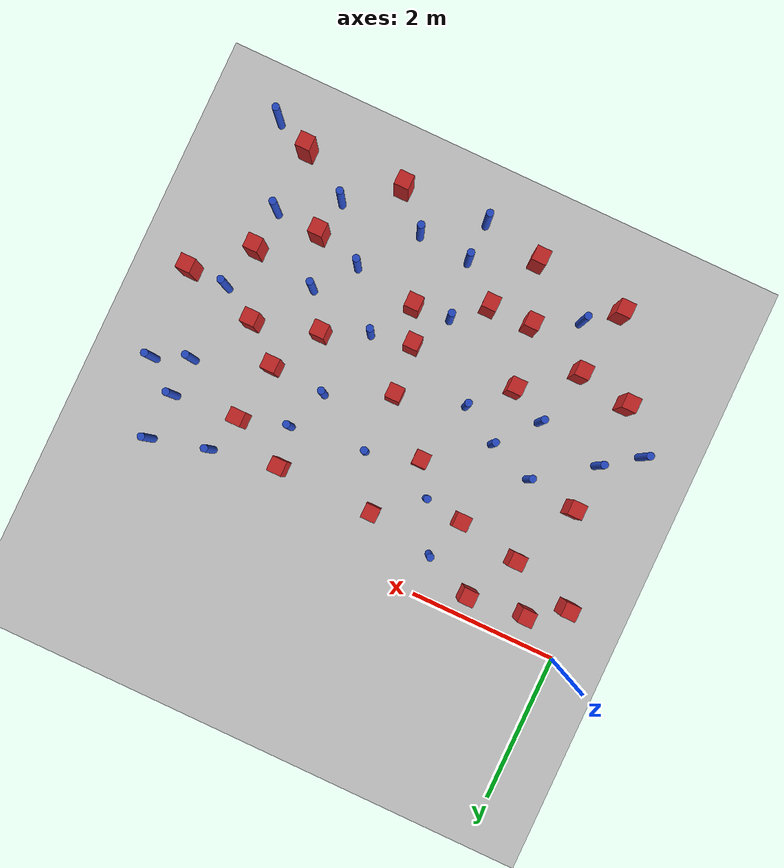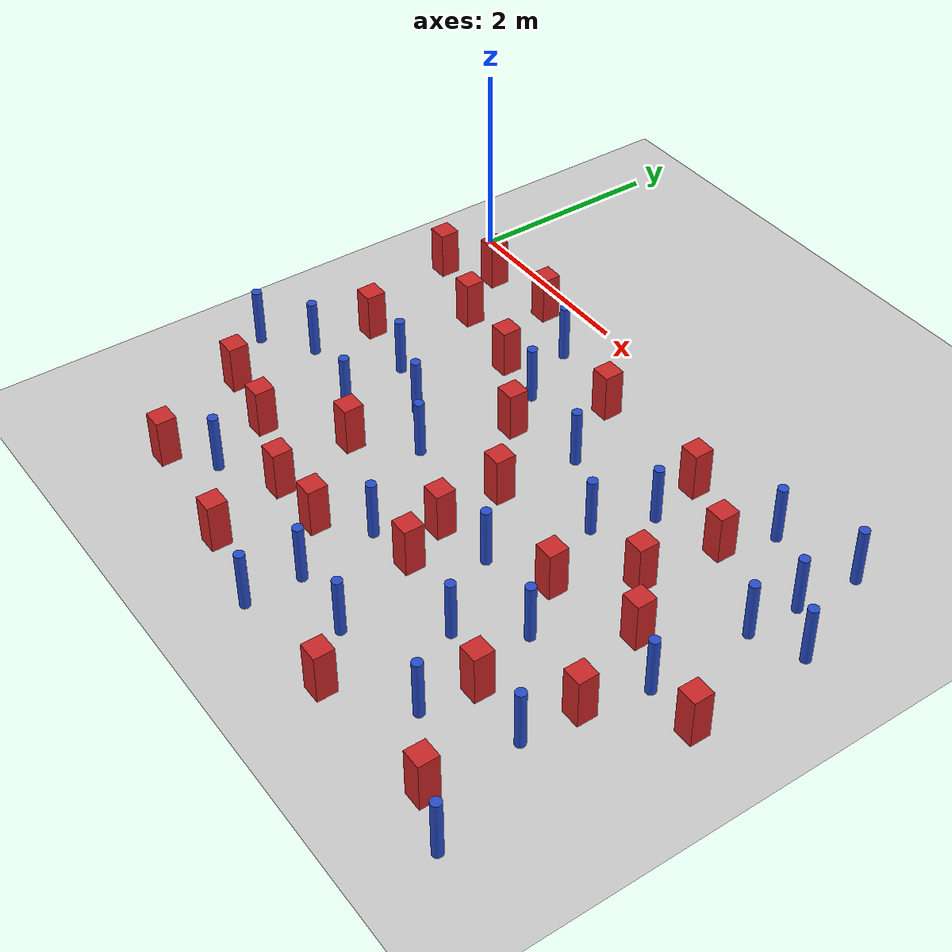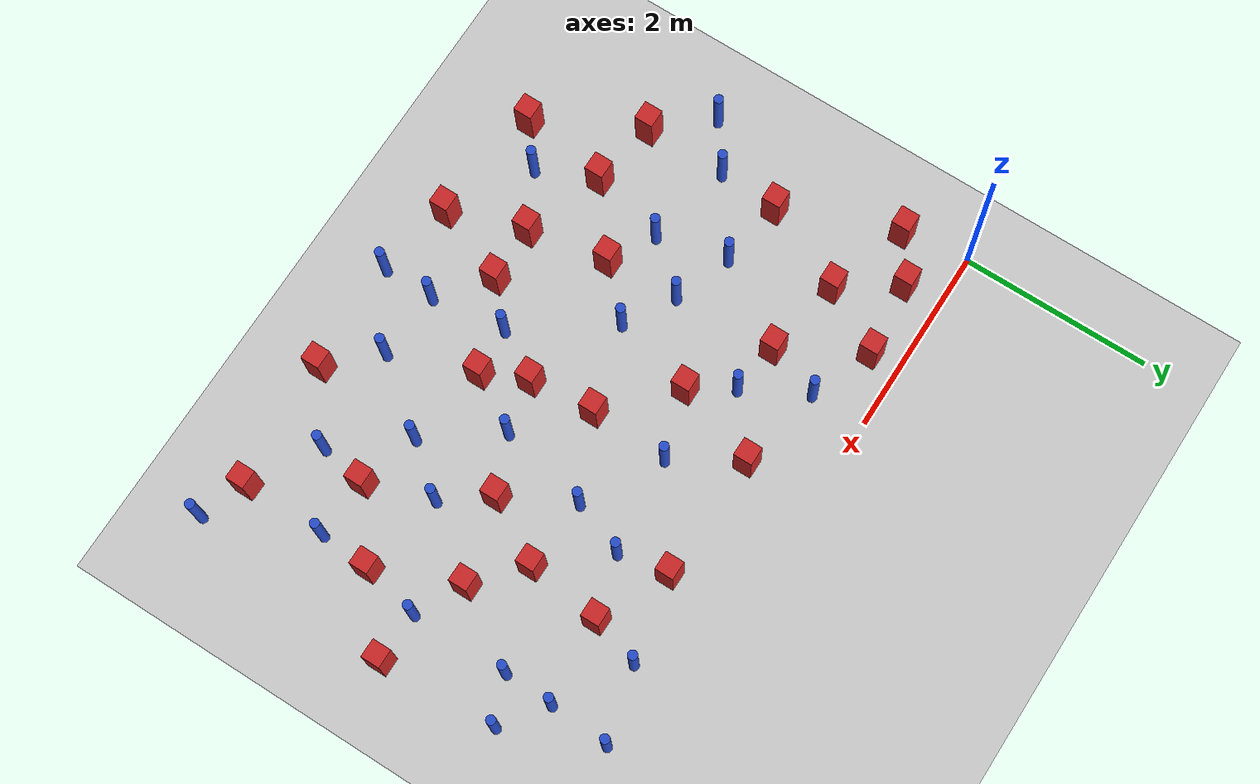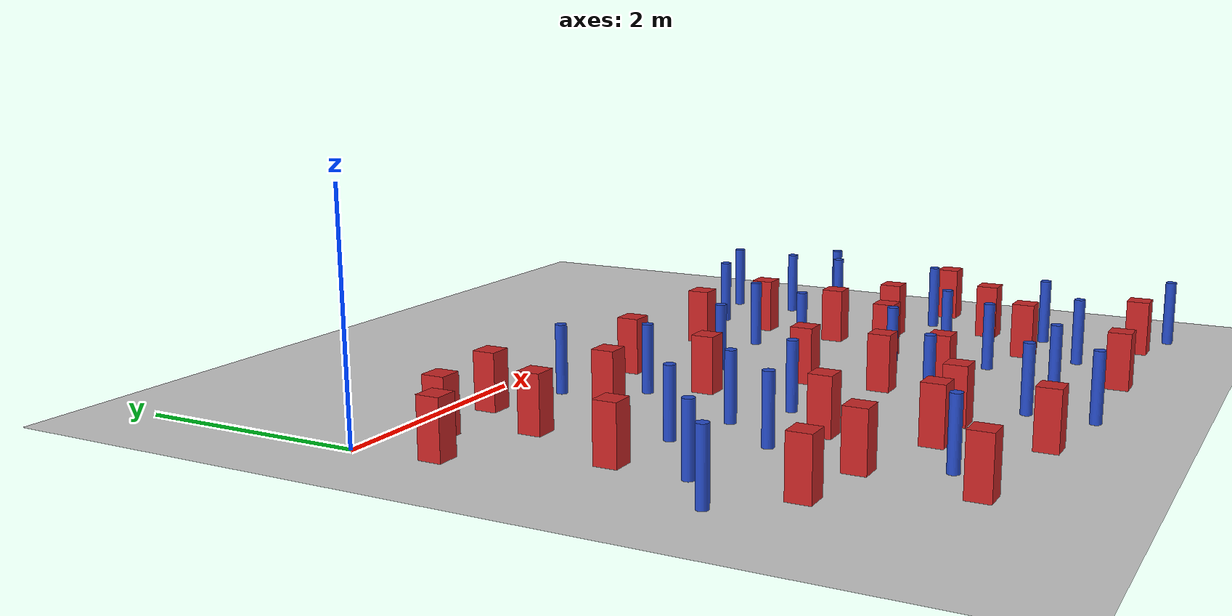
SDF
<sdf version="1.6">
 <world name="default">
  <model name="ground_plane">
   <static>1</static>
   <link name="link">
    <collision name="collision">
     <geometry><plane><normal>0 0 1</normal><size>100 100</size></plane></geometry>
     <surface><friction><ode><mu>100</mu><mu2>50</mu2></ode></friction></surface>
    </collision>
    <visual name="visual">
     <cast_shadows>0</cast_shadows>
     <geometry><plane><normal>0 0 1</normal><size>100 100</size></plane></geometry>
     <material>
      <ambient>1.0 1.0 1.0 1.0</ambient>
      <diffuse>0.8 0.8 0.8 1.0</diffuse>
      <specular>0.01 0.01 0.01 1.000000</specular>
     </material>
    </visual>
   </link>
  </model>
  <model name="square_post_obstacle2">
   <static>true</static>
   <pose>2.65907516394 -1.63502521584 8.22691968438e-08 7.2212513382e-06 -7.54495500217e-07 2.29674213826e-05</pose>
   <link name="link">
    <pose>0 0 0.25 0 -0 0</pose>
    <inertial>
     <mass>100</mass>
     <inertia>
      <ixx>0.166667</ixx>
      <ixy>0</ixy>
      <ixz>0</ixz>
      <iyy>0.166667</iyy>
      <iyz>0</iyz>
      <izz>0.166667</izz>
     </inertia>
    </inertial>
    <collision name="collision"><geometry><box><size>.2 .2 .5</size></box></geometry></collision>
    <visual name="visual">
     <geometry><box><size>.2 .2 .5</size></box></geometry>
     <material>
      <script><name>Gazebo/Red</name><uri>file://media/materials/scripts/gazebo.material</uri></script>
     </material>
    </visual>
   </link>
  </model>
  <model name="pole_obstacle1">
   <static>true</static>
   <pose>3.19692016445 -4.2430297542 2.88873142074e-08 -9.90536689859e-09 4.60219948989e-07 -1.20965994961e-07</pose>
   <link name="link">
    <pose>0 0 0.3 0 -0 0</pose>
    <inertial>
     <mass>1</mass>
     <inertia><ixx>0.145833</ixx><ixy>0</ixy><ixz>0</ixz><iyy>0.145833</iyy><iyz>0</iyz><izz>0.125</izz></inertia>
    </inertial>
    <collision name="collision">
     <geometry><cylinder><radius>0.05</radius><length>.6</length></cylinder></geometry>
    </collision>
    <visual name="visual">
     <geometry><cylinder><radius>0.05</radius><length>.6</length></cylinder></geometry>
     <material>
      <script><name>Gazebo/Blue</name><uri>file://media/materials/scripts/gazebo.material</uri></script>
     </material>
    </visual>
   </link>
  </model>
  <model name="square_post_obstacle5">
   <static>true</static>
   <pose>1.95356166881 -2.98597799232 8.22691968438e-08 7.2212513382e-06 -7.54495500217e-07 2.29674213826e-05</pose>
   <link name="link">
    <pose>0 0 0.25 0 -0 0</pose>
    <inertial>
     <mass>100</mass>
     <inertia>
      <ixx>0.166667</ixx>
      <ixy>0</ixy>
      <ixz>0</ixz>
      <iyy>0.166667</iyy>
      <iyz>0</iyz>
      <izz>0.166667</izz>
     </inertia>
    </inertial>
    <collision name="collision"><geometry><box><size>.2 .2 .5</size></box></geometry></collision>
    <visual name="visual">
     <geometry><box><size>.2 .2 .5</size></box></geometry>
     <material>
      <script><name>Gazebo/Red</name><uri>file://media/materials/scripts/gazebo.material</uri></script>
     </material>
    </visual>
   </link>
  </model>
  <model name="pole_obstacle8">
   <static>true</static>
   <pose>4.37933698074 -1.31018265101 2.88873142074e-08 -9.90536689445e-09 4.60219948999e-07 -1.20965994956e-07</pose>
   <link name="link">
    <pose>0 0 0.3 0 -0 0</pose>
    <inertial>
     <mass>1</mass>
     <inertia><ixx>0.145833</ixx><ixy>0</ixy><ixz>0</ixz><iyy>0.145833</iyy><iyz>0</iyz><izz>0.125</izz></inertia>
    </inertial>
    <collision name="collision">
     <geometry><cylinder><radius>0.05</radius><length>.6</length></cylinder></geometry>
    </collision>
    <visual name="visual">
     <geometry><cylinder><radius>0.05</radius><length>.6</length></cylinder></geometry>
     <material>
      <script><name>Gazebo/Blue</name><uri>file://media/materials/scripts/gazebo.material</uri></script>
     </material>
    </visual>
   </link>
  </model>
  <model name="pole_obstacle10">
   <static>true</static>
   <pose>5.02063466316 -4.25020811535 2.88873142074e-08 -9.90536690842e-09 4.60219948965e-07 -1.20965994976e-07</pose>
   <link name="link">
    <pose>0 0 0.3 0 -0 0</pose>
    <inertial>
     <mass>1</mass>
     <inertia><ixx>0.145833</ixx><ixy>0</ixy><ixz>0</ixz><iyy>0.145833</iyy><iyz>0</iyz><izz>0.125</izz></inertia>
    </inertial>
    <collision name="collision">
     <geometry><cylinder><radius>0.05</radius><length>.6</length></cylinder></geometry>
    </collision>
    <visual name="visual">
     <geometry><cylinder><radius>0.05</radius><length>.6</length></cylinder></geometry>
     <material>
      <script><name>Gazebo/Blue</name><uri>file://media/materials/scripts/gazebo.material</uri></script>
     </material>
    </visual>
   </link>
  </model>
  <model name="square_post_obstacle21">
   <static>true</static>
   <pose>5.75815409374 -3.21778082992 8.22691968438e-08 7.2212513382e-06 -7.54495500217e-07 2.29674213826e-05</pose>
   <link name="link">
    <pose>0 0 0.25 0 -0 0</pose>
    <inertial>
     <mass>100</mass>
     <inertia>
      <ixx>0.166667</ixx>
      <ixy>0</ixy>
      <ixz>0</ixz>
      <iyy>0.166667</iyy>
      <iyz>0</iyz>
      <izz>0.166667</izz>
     </inertia>
    </inertial>
    <collision name="collision"><geometry><box><size>.2 .2 .5</size></box></geometry></collision>
    <visual name="visual">
     <geometry><box><size>.2 .2 .5</size></box></geometry>
     <material>
      <script><name>Gazebo/Red</name><uri>file://media/materials/scripts/gazebo.material</uri></script>
     </material>
    </visual>
   </link>
  </model>
  <model name="square_post_obstacle25">
   <static>true</static>
   <pose>3.32419489324 -2.25799754889 8.22691968438e-08 7.2212513382e-06 -7.54495500217e-07 2.29674213826e-05</pose>
   <link name="link">
    <pose>0 0 0.25 0 -0 0</pose>
    <inertial>
     <mass>100</mass>
     <inertia>
      <ixx>0.166667</ixx>
      <ixy>0</ixy>
      <ixz>0</ixz>
      <iyy>0.166667</iyy>
      <iyz>0</iyz>
      <izz>0.166667</izz>
     </inertia>
    </inertial>
    <collision name="collision"><geometry><box><size>.2 .2 .5</size></box></geometry></collision>
    <visual name="visual">
     <geometry><box><size>.2 .2 .5</size></box></geometry>
     <material>
      <script><name>Gazebo/Red</name><uri>file://media/materials/scripts/gazebo.material</uri></script>
     </material>
    </visual>
   </link>
  </model>
  <model name="square_post_obstacle37">
   <static>true</static>
   <pose>0.604121483846 -1.88745931776 8.22691968438e-08 7.2212513382e-06 -7.54495500217e-07 2.29674213826e-05</pose>
   <link name="link">
    <pose>0 0 0.25 0 -0 0</pose>
    <inertial>
     <mass>100</mass>
     <inertia>
      <ixx>0.166667</ixx>
      <ixy>0</ixy>
      <ixz>0</ixz>
      <iyy>0.166667</iyy>
      <iyz>0</iyz>
      <izz>0.166667</izz>
     </inertia>
    </inertial>
    <collision name="collision"><geometry><box><size>.2 .2 .5</size></box></geometry></collision>
    <visual name="visual">
     <geometry><box><size>.2 .2 .5</size></box></geometry>
     <material>
      <script><name>Gazebo/Red</name><uri>file://media/materials/scripts/gazebo.material</uri></script>
     </material>
    </visual>
   </link>
  </model>
  <model name="pole_obstacle41">
   <static>true</static>
   <pose>3.94366712354 -2.8416236895 2.88873142074e-08 -9.90536690232e-09 4.6021994898e-07 -1.20965994968e-07</pose>
   <link name="link">
    <pose>0 0 0.3 0 -0 0</pose>
    <inertial>
     <mass>1</mass>
     <inertia><ixx>0.145833</ixx><ixy>0</ixy><ixz>0</ixz><iyy>0.145833</iyy><iyz>0</iyz><izz>0.125</izz></inertia>
    </inertial>
    <collision name="collision">
     <geometry><cylinder><radius>0.05</radius><length>.6</length></cylinder></geometry>
    </collision>
    <visual name="visual">
     <geometry><cylinder><radius>0.05</radius><length>.6</length></cylinder></geometry>
     <material>
      <script><name>Gazebo/Blue</name><uri>file://media/materials/scripts/gazebo.material</uri></script>
     </material>
    </visual>
   </link>
  </model>
  <model name="square_post_obstacle47">
   <static>true</static>
   <pose>4.35958236372 -4.75237599017 8.22691968438e-08 7.2212513382e-06 -7.54495500217e-07 2.29674213826e-05</pose>
   <link name="link">
    <pose>0 0 0.25 0 -0 0</pose>
    <inertial>
     <mass>100</mass>
     <inertia>
      <ixx>0.166667</ixx>
      <ixy>0</ixy>
      <ixz>0</ixz>
      <iyy>0.166667</iyy>
      <iyz>0</iyz>
      <izz>0.166667</izz>
     </inertia>
    </inertial>
    <collision name="collision"><geometry><box><size>.2 .2 .5</size></box></geometry></collision>
    <visual name="visual">
     <geometry><box><size>.2 .2 .5</size></box></geometry>
     <material>
      <script><name>Gazebo/Red</name><uri>file://media/materials/scripts/gazebo.material</uri></script>
     </material>
    </visual>
   </link>
  </model>
  <model name="pole_obstacle50">
   <static>true</static>
   <pose>4.47226875539 -3.5674996448 2.88873142074e-08 -9.90536690245e-09 4.6021994898e-07 -1.20965994966e-07</pose>
   <link name="link">
    <pose>0 0 0.3 0 -0 0</pose>
    <inertial>
     <mass>1</mass>
     <inertia><ixx>0.145833</ixx><ixy>0</ixy><ixz>0</ixz><iyy>0.145833</iyy><iyz>0</iyz><izz>0.125</izz></inertia>
    </inertial>
    <collision name="collision">
     <geometry><cylinder><radius>0.05</radius><length>.6</length></cylinder></geometry>
    </collision>
    <visual name="visual">
     <geometry><cylinder><radius>0.05</radius><length>.6</length></cylinder></geometry>
     <material>
      <script><name>Gazebo/Blue</name><uri>file://media/materials/scripts/gazebo.material</uri></script>
     </material>
    </visual>
   </link>
  </model>
  <model name="square_post_obstacle56">
   <static>true</static>
   <pose>4.5292871625 -2.57862227413 8.22691968438e-08 7.2212513382e-06 -7.54495500217e-07 2.29674213826e-05</pose>
   <link name="link">
    <pose>0 0 0.25 0 -0 0</pose>
    <inertial>
     <mass>100</mass>
     <inertia>
      <ixx>0.166667</ixx>
      <ixy>0</ixy>
      <ixz>0</ixz>
      <iyy>0.166667</iyy>
      <iyz>0</iyz>
      <izz>0.166667</izz>
     </inertia>
    </inertial>
    <collision name="collision"><geometry><box><size>.2 .2 .5</size></box></geometry></collision>
    <visual name="visual">
     <geometry><box><size>.2 .2 .5</size></box></geometry>
     <material>
      <script><name>Gazebo/Red</name><uri>file://media/materials/scripts/gazebo.material</uri></script>
     </material>
    </visual>
   </link>
  </model>
  <model name="square_post_obstacle65">
   <static>true</static>
   <pose>0.138273590117 -0.688799583027 8.22691968438e-08 7.22125133819e-06 -7.54495500217e-07 2.29674213826e-05</pose>
   <link name="link">
    <pose>0 0 0.25 0 -0 0</pose>
    <inertial>
     <mass>100</mass>
     <inertia>
      <ixx>0.166667</ixx>
      <ixy>0</ixy>
      <ixz>0</ixz>
      <iyy>0.166667</iyy>
      <iyz>0</iyz>
      <izz>0.166667</izz>
     </inertia>
    </inertial>
    <collision name="collision"><geometry><box><size>.2 .2 .5</size></box></geometry></collision>
    <visual name="visual">
     <geometry><box><size>.2 .2 .5</size></box></geometry>
     <material>
      <script><name>Gazebo/Red</name><uri>file://media/materials/scripts/gazebo.material</uri></script>
     </material>
    </visual>
   </link>
  </model>
  <model name="pole_obstacle63">
   <static>true</static>
   <pose>4.87603295644 -3.05621292383 2.88873142074e-08 -9.90536690245e-09 4.6021994898e-07 -1.20965994966e-07</pose>
   <link name="link">
    <pose>0 0 0.3 0 -0 0</pose>
    <inertial>
     <mass>1</mass>
     <inertia><ixx>0.145833</ixx><ixy>0</ixy><ixz>0</ixz><iyy>0.145833</iyy><iyz>0</iyz><izz>0.125</izz></inertia>
    </inertial>
    <collision name="collision">
     <geometry><cylinder><radius>0.05</radius><length>.6</length></cylinder></geometry>
    </collision>
    <visual name="visual">
     <geometry><cylinder><radius>0.05</radius><length>.6</length></cylinder></geometry>
     <material>
      <script><name>Gazebo/Blue</name><uri>file://media/materials/scripts/gazebo.material</uri></script>
     </material>
    </visual>
   </link>
  </model>
  <model name="square_post_obstacle67">
   <static>true</static>
   <pose>1.2677827063 -3.52688391108 8.22691968438e-08 7.2212513382e-06 -7.54495500217e-07 2.29674213826e-05</pose>
   <link name="link">
    <pose>0 0 0.25 0 -0 0</pose>
    <inertial>
     <mass>100</mass>
     <inertia>
      <ixx>0.166667</ixx>
      <ixy>0</ixy>
      <ixz>0</ixz>
      <iyy>0.166667</iyy>
      <iyz>0</iyz>
      <izz>0.166667</izz>
     </inertia>
    </inertial>
    <collision name="collision"><geometry><box><size>.2 .2 .5</size></box></geometry></collision>
    <visual name="visual">
     <geometry><box><size>.2 .2 .5</size></box></geometry>
     <material>
      <script><name>Gazebo/Red</name><uri>file://media/materials/scripts/gazebo.material</uri></script>
     </material>
    </visual>
   </link>
  </model>
  <model name="pole_obstacle89">
   <static>true</static>
   <pose>3.35976422919 -1.42641567848 2.88873142074e-08 -9.90536689395e-09 4.60219949e-07 -1.20965994953e-07</pose>
   <link name="link">
    <pose>0 0 0.3 0 -0 0</pose>
    <inertial>
     <mass>1</mass>
     <inertia><ixx>0.145833</ixx><ixy>0</ixy><ixz>0</ixz><iyy>0.145833</iyy><iyz>0</iyz><izz>0.125</izz></inertia>
    </inertial>
    <collision name="collision">
     <geometry><cylinder><radius>0.05</radius><length>.6</length></cylinder></geometry>
    </collision>
    <visual name="visual">
     <geometry><cylinder><radius>0.05</radius><length>.6</length></cylinder></geometry>
     <material>
      <script><name>Gazebo/Blue</name><uri>file://media/materials/scripts/gazebo.material</uri></script>
     </material>
    </visual>
   </link>
  </model>
  <model name="pole_obstacle90">
   <static>true</static>
   <pose>3.19130147926 -4.79603308093 2.88873142074e-08 -9.90536689859e-09 4.60219948989e-07 -1.20965994961e-07</pose>
   <link name="link">
    <pose>0 0 0.3 0 -0 0</pose>
    <inertial>
     <mass>1</mass>
     <inertia><ixx>0.145833</ixx><ixy>0</ixy><ixz>0</ixz><iyy>0.145833</iyy><iyz>0</iyz><izz>0.125</izz></inertia>
    </inertial>
    <collision name="collision">
     <geometry><cylinder><radius>0.05</radius><length>.6</length></cylinder></geometry>
    </collision>
    <visual name="visual">
     <geometry><cylinder><radius>0.05</radius><length>.6</length></cylinder></geometry>
     <material>
      <script><name>Gazebo/Blue</name><uri>file://media/materials/scripts/gazebo.material</uri></script>
     </material>
    </visual>
   </link>
  </model>
  <model name="pole_obstacle101">
   <static>true</static>
   <pose>3.91275337046 -4.29644837357 2.88873142074e-08 -9.90536689859e-09 4.60219948989e-07 -1.20965994961e-07</pose>
   <link name="link">
    <pose>0 0 0.3 0 -0 0</pose>
    <inertial>
     <mass>1</mass>
     <inertia><ixx>0.145833</ixx><ixy>0</ixy><ixz>0</ixz><iyy>0.145833</iyy><iyz>0</iyz><izz>0.125</izz></inertia>
    </inertial>
    <collision name="collision">
     <geometry><cylinder><radius>0.05</radius><length>.6</length></cylinder></geometry>
    </collision>
    <visual name="visual">
     <geometry><cylinder><radius>0.05</radius><length>.6</length></cylinder></geometry>
     <material>
      <script><name>Gazebo/Blue</name><uri>file://media/materials/scripts/gazebo.material</uri></script>
     </material>
    </visual>
   </link>
  </model>
  <model name="square_post_obstacle92">
   <static>true</static>
   <pose>5.70820086182 -4.66755593937 8.22691968438e-08 7.22125133819e-06 -7.54495500217e-07 2.29674213826e-05</pose>
   <link name="link">
    <pose>0 0 0.25 0 -0 0</pose>
    <inertial>
     <mass>100</mass>
     <inertia>
      <ixx>0.166667</ixx>
      <ixy>0</ixy>
      <ixz>0</ixz>
      <iyy>0.166667</iyy>
      <iyz>0</iyz>
      <izz>0.166667</izz>
     </inertia>
    </inertial>
    <collision name="collision"><geometry><box><size>.2 .2 .5</size></box></geometry></collision>
    <visual name="visual">
     <geometry><box><size>.2 .2 .5</size></box></geometry>
     <material>
      <script><name>Gazebo/Red</name><uri>file://media/materials/scripts/gazebo.material</uri></script>
     </material>
    </visual>
   </link>
  </model>
  <model name="pole_obstacle106">
   <static>true</static>
   <pose>6.37298606447 -1.36751825747 2.88873142074e-08 -9.90536689445e-09 4.60219948999e-07 -1.20965994956e-07</pose>
   <link name="link">
    <pose>0 0 0.3 0 -0 0</pose>
    <inertial>
     <mass>1</mass>
     <inertia><ixx>0.145833</ixx><ixy>0</ixy><ixz>0</ixz><iyy>0.145833</iyy><iyz>0</iyz><izz>0.125</izz></inertia>
    </inertial>
    <collision name="collision">
     <geometry><cylinder><radius>0.05</radius><length>.6</length></cylinder></geometry>
    </collision>
    <visual name="visual">
     <geometry><cylinder><radius>0.05</radius><length>.6</length></cylinder></geometry>
     <material>
      <script><name>Gazebo/Blue</name><uri>file://media/materials/scripts/gazebo.material</uri></script>
     </material>
    </visual>
   </link>
  </model>
  <model name="pole_obstacle111">
   <static>true</static>
   <pose>5.72882076305 -3.77597693275 2.88873142074e-08 -9.90536690245e-09 4.6021994898e-07 -1.20965994966e-07</pose>
   <link name="link">
    <pose>0 0 0.3 0 -0 0</pose>
    <inertial>
     <mass>1</mass>
     <inertia><ixx>0.145833</ixx><ixy>0</ixy><ixz>0</ixz><iyy>0.145833</iyy><iyz>0</iyz><izz>0.125</izz></inertia>
    </inertial>
    <collision name="collision">
     <geometry><cylinder><radius>0.05</radius><length>.6</length></cylinder></geometry>
    </collision>
    <visual name="visual">
     <geometry><cylinder><radius>0.05</radius><length>.6</length></cylinder></geometry>
     <material>
      <script><name>Gazebo/Blue</name><uri>file://media/materials/scripts/gazebo.material</uri></script>
     </material>
    </visual>
   </link>
  </model>
  <model name="pole_obstacle112">
   <static>true</static>
   <pose>0.0824759599332 -2.87984123777 2.88873142074e-08 -9.90536689907e-09 4.60219948988e-07 -1.20965994961e-07</pose>
   <link name="link">
    <pose>0 0 0.3 0 -0 0</pose>
    <inertial>
     <mass>1</mass>
     <inertia><ixx>0.145833</ixx><ixy>0</ixy><ixz>0</ixz><iyy>0.145833</iyy><iyz>0</iyz><izz>0.125</izz></inertia>
    </inertial>
    <collision name="collision">
     <geometry><cylinder><radius>0.05</radius><length>.6</length></cylinder></geometry>
    </collision>
    <visual name="visual">
     <geometry><cylinder><radius>0.05</radius><length>.6</length></cylinder></geometry>
     <material>
      <script><name>Gazebo/Blue</name><uri>file://media/materials/scripts/gazebo.material</uri></script>
     </material>
    </visual>
   </link>
  </model>
  <model name="square_post_obstacle102">
   <static>true</static>
   <pose>4.91128329174 -1.9215703504 8.22691968438e-08 7.2212513382e-06 -7.54495500217e-07 2.29674213826e-05</pose>
   <link name="link">
    <pose>0 0 0.25 0 -0 0</pose>
    <inertial>
     <mass>100</mass>
     <inertia>
      <ixx>0.166667</ixx>
      <ixy>0</ixy>
      <ixz>0</ixz>
      <iyy>0.166667</iyy>
      <iyz>0</iyz>
      <izz>0.166667</izz>
     </inertia>
    </inertial>
    <collision name="collision"><geometry><box><size>.2 .2 .5</size></box></geometry></collision>
    <visual name="visual">
     <geometry><box><size>.2 .2 .5</size></box></geometry>
     <material>
      <script><name>Gazebo/Red</name><uri>file://media/materials/scripts/gazebo.material</uri></script>
     </material>
    </visual>
   </link>
  </model>
  <model name="square_post_obstacle104">
   <static>true</static>
   <pose>2.37287855687 -4.61966893306 8.22691968438e-08 7.22125133819e-06 -7.54495500217e-07 2.29674213826e-05</pose>
   <link name="link">
    <pose>0 0 0.25 0 -0 0</pose>
    <inertial>
     <mass>100</mass>
     <inertia>
      <ixx>0.166667</ixx>
      <ixy>0</ixy>
      <ixz>0</ixz>
      <iyy>0.166667</iyy>
      <iyz>0</iyz>
      <izz>0.166667</izz>
     </inertia>
    </inertial>
    <collision name="collision"><geometry><box><size>.2 .2 .5</size></box></geometry></collision>
    <visual name="visual">
     <geometry><box><size>.2 .2 .5</size></box></geometry>
     <material>
      <script><name>Gazebo/Red</name><uri>file://media/materials/scripts/gazebo.material</uri></script>
     </material>
    </visual>
   </link>
  </model>
  <model name="square_post_obstacle108">
   <static>true</static>
   <pose>1.11962990205 -4.46311704099 8.22691968438e-08 7.2212513382e-06 -7.54495500217e-07 2.29674213826e-05</pose>
   <link name="link">
    <pose>0 0 0.25 0 -0 0</pose>
    <inertial>
     <mass>100</mass>
     <inertia>
      <ixx>0.166667</ixx>
      <ixy>0</ixy>
      <ixz>0</ixz>
      <iyy>0.166667</iyy>
      <iyz>0</iyz>
      <izz>0.166667</izz>
     </inertia>
    </inertial>
    <collision name="collision"><geometry><box><size>.2 .2 .5</size></box></geometry></collision>
    <visual name="visual">
     <geometry><box><size>.2 .2 .5</size></box></geometry>
     <material>
      <script><name>Gazebo/Red</name><uri>file://media/materials/scripts/gazebo.material</uri></script>
     </material>
    </visual>
   </link>
  </model>
  <model name="square_post_obstacle111">
   <static>true</static>
   <pose>5.01823998776 -1.12566041722 8.22691968438e-08 7.2212513382e-06 -7.54495500217e-07 2.29674213826e-05</pose>
   <link name="link">
    <pose>0 0 0.25 0 -0 0</pose>
    <inertial>
     <mass>100</mass>
     <inertia>
      <ixx>0.166667</ixx>
      <ixy>0</ixy>
      <ixz>0</ixz>
      <iyy>0.166667</iyy>
      <iyz>0</iyz>
      <izz>0.166667</izz>
     </inertia>
    </inertial>
    <collision name="collision"><geometry><box><size>.2 .2 .5</size></box></geometry></collision>
    <visual name="visual">
     <geometry><box><size>.2 .2 .5</size></box></geometry>
     <material>
      <script><name>Gazebo/Red</name><uri>file://media/materials/scripts/gazebo.material</uri></script>
     </material>
    </visual>
   </link>
  </model>
  <model name="pole_obstacle122">
   <static>true</static>
   <pose>4.16465223404 -1.8752729449 2.88873142074e-08 -9.90536689445e-09 4.60219948999e-07 -1.20965994956e-07</pose>
   <link name="link">
    <pose>0 0 0.3 0 -0 0</pose>
    <inertial>
     <mass>1</mass>
     <inertia><ixx>0.145833</ixx><ixy>0</ixy><ixz>0</ixz><iyy>0.145833</iyy><iyz>0</iyz><izz>0.125</izz></inertia>
    </inertial>
    <collision name="collision">
     <geometry><cylinder><radius>0.05</radius><length>.6</length></cylinder></geometry>
    </collision>
    <visual name="visual">
     <geometry><cylinder><radius>0.05</radius><length>.6</length></cylinder></geometry>
     <material>
      <script><name>Gazebo/Blue</name><uri>file://media/materials/scripts/gazebo.material</uri></script>
     </material>
    </visual>
   </link>
  </model>
  <model name="pole_obstacle123">
   <static>true</static>
   <pose>0.557690832557 -2.53465240469 2.88873142074e-08 -9.90536689636e-09 4.60219948994e-07 -1.20965994958e-07</pose>
   <link name="link">
    <pose>0 0 0.3 0 -0 0</pose>
    <inertial>
     <mass>1</mass>
     <inertia><ixx>0.145833</ixx><ixy>0</ixy><ixz>0</ixz><iyy>0.145833</iyy><iyz>0</iyz><izz>0.125</izz></inertia>
    </inertial>
    <collision name="collision">
     <geometry><cylinder><radius>0.05</radius><length>.6</length></cylinder></geometry>
    </collision>
    <visual name="visual">
     <geometry><cylinder><radius>0.05</radius><length>.6</length></cylinder></geometry>
     <material>
      <script><name>Gazebo/Blue</name><uri>file://media/materials/scripts/gazebo.material</uri></script>
     </material>
    </visual>
   </link>
  </model>
  <model name="pole_obstacle126">
   <static>true</static>
   <pose>5.18425724967 -0.602037603185 2.88873142074e-08 -9.90536689837e-09 4.60219948989e-07 -1.2096599496e-07</pose>
   <link name="link">
    <pose>0 0 0.3 0 -0 0</pose>
    <inertial>
     <mass>1</mass>
     <inertia><ixx>0.145833</ixx><ixy>0</ixy><ixz>0</ixz><iyy>0.145833</iyy><iyz>0</iyz><izz>0.125</izz></inertia>
    </inertial>
    <collision name="collision">
     <geometry><cylinder><radius>0.05</radius><length>.6</length></cylinder></geometry>
    </collision>
    <visual name="visual">
     <geometry><cylinder><radius>0.05</radius><length>.6</length></cylinder></geometry>
     <material>
      <script><name>Gazebo/Blue</name><uri>file://media/materials/scripts/gazebo.material</uri></script>
     </material>
    </visual>
   </link>
  </model>
  <model name="square_post_obstacle114">
   <static>true</static>
   <pose>1.00811604806 -0.976347984818 8.22691968438e-08 7.2212513382e-06 -7.54495500217e-07 2.29674213826e-05</pose>
   <link name="link">
    <pose>0 0 0.25 0 -0 0</pose>
    <inertial>
     <mass>100</mass>
     <inertia>
      <ixx>0.166667</ixx>
      <ixy>0</ixy>
      <ixz>0</ixz>
      <iyy>0.166667</iyy>
      <iyz>0</iyz>
      <izz>0.166667</izz>
     </inertia>
    </inertial>
    <collision name="collision"><geometry><box><size>.2 .2 .5</size></box></geometry></collision>
    <visual name="visual">
     <geometry><box><size>.2 .2 .5</size></box></geometry>
     <material>
      <script><name>Gazebo/Red</name><uri>file://media/materials/scripts/gazebo.material</uri></script>
     </material>
    </visual>
   </link>
  </model>
  <model name="square_post_obstacle116">
   <static>true</static>
   <pose>1.85654422721 -1.13252176522 8.22691968438e-08 7.2212513382e-06 -7.54495500217e-07 2.29674213826e-05</pose>
   <link name="link">
    <pose>0 0 0.25 0 -0 0</pose>
    <inertial>
     <mass>100</mass>
     <inertia>
      <ixx>0.166667</ixx>
      <ixy>0</ixy>
      <ixz>0</ixz>
      <iyy>0.166667</iyy>
      <iyz>0</iyz>
      <izz>0.166667</izz>
     </inertia>
    </inertial>
    <collision name="collision"><geometry><box><size>.2 .2 .5</size></box></geometry></collision>
    <visual name="visual">
     <geometry><box><size>.2 .2 .5</size></box></geometry>
     <material>
      <script><name>Gazebo/Red</name><uri>file://media/materials/scripts/gazebo.material</uri></script>
     </material>
    </visual>
   </link>
  </model>
  <model name="square_post_obstacle119">
   <static>true</static>
   <pose>2.69940785559 -3.81656030204 8.22691968438e-08 7.2212513382e-06 -7.54495500217e-07 2.29674213826e-05</pose>
   <link name="link">
    <pose>0 0 0.25 0 -0 0</pose>
    <inertial>
     <mass>100</mass>
     <inertia>
      <ixx>0.166667</ixx>
      <ixy>0</ixy>
      <ixz>0</ixz>
      <iyy>0.166667</iyy>
      <iyz>0</iyz>
      <izz>0.166667</izz>
     </inertia>
    </inertial>
    <collision name="collision"><geometry><box><size>.2 .2 .5</size></box></geometry></collision>
    <visual name="visual">
     <geometry><box><size>.2 .2 .5</size></box></geometry>
     <material>
      <script><name>Gazebo/Red</name><uri>file://media/materials/scripts/gazebo.material</uri></script>
     </material>
    </visual>
   </link>
  </model>
  <model name="pole_obstacle145">
   <static>true</static>
   <pose>5.91922112708 -1.0391073356 2.88873142074e-08 -9.90536689582e-09 4.60219948995e-07 -1.20965994957e-07</pose>
   <link name="link">
    <pose>0 0 0.3 0 -0 0</pose>
    <inertial>
     <mass>1</mass>
     <inertia><ixx>0.145833</ixx><ixy>0</ixy><ixz>0</ixz><iyy>0.145833</iyy><iyz>0</iyz><izz>0.125</izz></inertia>
    </inertial>
    <collision name="collision">
     <geometry><cylinder><radius>0.05</radius><length>.6</length></cylinder></geometry>
    </collision>
    <visual name="visual">
     <geometry><cylinder><radius>0.05</radius><length>.6</length></cylinder></geometry>
     <material>
      <script><name>Gazebo/Blue</name><uri>file://media/materials/scripts/gazebo.material</uri></script>
     </material>
    </visual>
   </link>
  </model>
  <model name="pole_obstacle149">
   <static>true</static>
   <pose>6.20042462631 -4.86714961503 2.88873142074e-08 -9.90536690842e-09 4.60219948965e-07 -1.20965994976e-07</pose>
   <link name="link">
    <pose>0 0 0.3 0 -0 0</pose>
    <inertial>
     <mass>1</mass>
     <inertia><ixx>0.145833</ixx><ixy>0</ixy><ixz>0</ixz><iyy>0.145833</iyy><iyz>0</iyz><izz>0.125</izz></inertia>
    </inertial>
    <collision name="collision">
     <geometry><cylinder><radius>0.05</radius><length>.6</length></cylinder></geometry>
    </collision>
    <visual name="visual">
     <geometry><cylinder><radius>0.05</radius><length>.6</length></cylinder></geometry>
     <material>
      <script><name>Gazebo/Blue</name><uri>file://media/materials/scripts/gazebo.material</uri></script>
     </material>
    </visual>
   </link>
  </model>
  <model name="pole_obstacle150">
   <static>true</static>
   <pose>2.42533863582 -2.51902932034 2.88873142074e-08 -9.90536690232e-09 4.6021994898e-07 -1.20965994968e-07</pose>
   <link name="link">
    <pose>0 0 0.3 0 -0 0</pose>
    <inertial>
     <mass>1</mass>
     <inertia><ixx>0.145833</ixx><ixy>0</ixy><ixz>0</ixz><iyy>0.145833</iyy><iyz>0</iyz><izz>0.125</izz></inertia>
    </inertial>
    <collision name="collision">
     <geometry><cylinder><radius>0.05</radius><length>.6</length></cylinder></geometry>
    </collision>
    <visual name="visual">
     <geometry><cylinder><radius>0.05</radius><length>.6</length></cylinder></geometry>
     <material>
      <script><name>Gazebo/Blue</name><uri>file://media/materials/scripts/gazebo.material</uri></script>
     </material>
    </visual>
   </link>
  </model>
  <model name="pole_obstacle151">
   <static>true</static>
   <pose>3.09393052282 -3.45484099642 2.88873142074e-08 -9.90536690232e-09 4.6021994898e-07 -1.20965994968e-07</pose>
   <link name="link">
    <pose>0 0 0.3 0 -0 0</pose>
    <inertial>
     <mass>1</mass>
     <inertia><ixx>0.145833</ixx><ixy>0</ixy><ixz>0</ixz><iyy>0.145833</iyy><iyz>0</iyz><izz>0.125</izz></inertia>
    </inertial>
    <collision name="collision">
     <geometry><cylinder><radius>0.05</radius><length>.6</length></cylinder></geometry>
    </collision>
    <visual name="visual">
     <geometry><cylinder><radius>0.05</radius><length>.6</length></cylinder></geometry>
     <material>
      <script><name>Gazebo/Blue</name><uri>file://media/materials/scripts/gazebo.material</uri></script>
     </material>
    </visual>
   </link>
  </model>
  <model name="square_post_obstacle144">
   <static>true</static>
   <pose>6.42162463604 -2.61902697204 8.22691968438e-08 7.2212513382e-06 -7.54495500217e-07 2.29674213826e-05</pose>
   <link name="link">
    <pose>0 0 0.25 0 -0 0</pose>
    <inertial>
     <mass>100</mass>
     <inertia>
      <ixx>0.166667</ixx>
      <ixy>0</ixy>
      <ixz>0</ixz>
      <iyy>0.166667</iyy>
      <iyz>0</iyz>
      <izz>0.166667</izz>
     </inertia>
    </inertial>
    <collision name="collision"><geometry><box><size>.2 .2 .5</size></box></geometry></collision>
    <visual name="visual">
     <geometry><box><size>.2 .2 .5</size></box></geometry>
     <material>
      <script><name>Gazebo/Red</name><uri>file://media/materials/scripts/gazebo.material</uri></script>
     </material>
    </visual>
   </link>
  </model>
  <model name="square_post_obstacle148">
   <static>true</static>
   <pose>2.11050809462 -3.82511055086 8.22691968438e-08 7.2212513382e-06 -7.54495500217e-07 2.29674213826e-05</pose>
   <link name="link">
    <pose>0 0 0.25 0 -0 0</pose>
    <inertial>
     <mass>100</mass>
     <inertia>
      <ixx>0.166667</ixx>
      <ixy>0</ixy>
      <ixz>0</ixz>
      <iyy>0.166667</iyy>
      <iyz>0</iyz>
      <izz>0.166667</izz>
     </inertia>
    </inertial>
    <collision name="collision"><geometry><box><size>.2 .2 .5</size></box></geometry></collision>
    <visual name="visual">
     <geometry><box><size>.2 .2 .5</size></box></geometry>
     <material>
      <script><name>Gazebo/Red</name><uri>file://media/materials/scripts/gazebo.material</uri></script>
     </material>
    </visual>
   </link>
  </model>
  <model name="pole_obstacle160">
   <static>true</static>
   <pose>1.90841557562 -2.2144913604 2.88873142074e-08 -9.90536689791e-09 4.6021994899e-07 -1.20965994959e-07</pose>
   <link name="link">
    <pose>0 0 0.3 0 -0 0</pose>
    <inertial>
     <mass>1</mass>
     <inertia><ixx>0.145833</ixx><ixy>0</ixy><ixz>0</ixz><iyy>0.145833</iyy><iyz>0</iyz><izz>0.125</izz></inertia>
    </inertial>
    <collision name="collision">
     <geometry><cylinder><radius>0.05</radius><length>.6</length></cylinder></geometry>
    </collision>
    <visual name="visual">
     <geometry><cylinder><radius>0.05</radius><length>.6</length></cylinder></geometry>
     <material>
      <script><name>Gazebo/Blue</name><uri>file://media/materials/scripts/gazebo.material</uri></script>
     </material>
    </visual>
   </link>
  </model>
  <model name="square_post_obstacle157">
   <static>true</static>
   <pose>3.38996089667 -2.94331434926 8.22691968438e-08 7.2212513382e-06 -7.54495500217e-07 2.29674213826e-05</pose>
   <link name="link">
    <pose>0 0 0.25 0 -0 0</pose>
    <inertial>
     <mass>100</mass>
     <inertia>
      <ixx>0.166667</ixx>
      <ixy>0</ixy>
      <ixz>0</ixz>
      <iyy>0.166667</iyy>
      <iyz>0</iyz>
      <izz>0.166667</izz>
     </inertia>
    </inertial>
    <collision name="collision"><geometry><box><size>.2 .2 .5</size></box></geometry></collision>
    <visual name="visual">
     <geometry><box><size>.2 .2 .5</size></box></geometry>
     <material>
      <script><name>Gazebo/Red</name><uri>file://media/materials/scripts/gazebo.material</uri></script>
     </material>
    </visual>
   </link>
  </model>
  <model name="pole_obstacle169">
   <static>true</static>
   <pose>5.90035151717 -2.60816546591 2.88873142074e-08 -9.90536690245e-09 4.6021994898e-07 -1.20965994966e-07</pose>
   <link name="link">
    <pose>0 0 0.3 0 -0 0</pose>
    <inertial>
     <mass>1</mass>
     <inertia><ixx>0.145833</ixx><ixy>0</ixy><ixz>0</ixz><iyy>0.145833</iyy><iyz>0</iyz><izz>0.125</izz></inertia>
    </inertial>
    <collision name="collision">
     <geometry><cylinder><radius>0.05</radius><length>.6</length></cylinder></geometry>
    </collision>
    <visual name="visual">
     <geometry><cylinder><radius>0.05</radius><length>.6</length></cylinder></geometry>
     <material>
      <script><name>Gazebo/Blue</name><uri>file://media/materials/scripts/gazebo.material</uri></script>
     </material>
    </visual>
   </link>
  </model>
  <model name="square_post_obstacle161">
   <static>true</static>
   <pose>3.59202710283 -3.40469246281 8.22691968438e-08 7.2212513382e-06 -7.54495500217e-07 2.29674213826e-05</pose>
   <link name="link">
    <pose>0 0 0.25 0 -0 0</pose>
    <inertial>
     <mass>100</mass>
     <inertia>
      <ixx>0.166667</ixx>
      <ixy>0</ixy>
      <ixz>0</ixz>
      <iyy>0.166667</iyy>
      <iyz>0</iyz>
      <izz>0.166667</izz>
     </inertia>
    </inertial>
    <collision name="collision"><geometry><box><size>.2 .2 .5</size></box></geometry></collision>
    <visual name="visual">
     <geometry><box><size>.2 .2 .5</size></box></geometry>
     <material>
      <script><name>Gazebo/Red</name><uri>file://media/materials/scripts/gazebo.material</uri></script>
     </material>
    </visual>
   </link>
  </model>
  <model name="pole_obstacle172">
   <static>true</static>
   <pose>2.38455194825 -1.21068955225 2.88873142074e-08 -9.90536689395e-09 4.60219949e-07 -1.20965994953e-07</pose>
   <link name="link">
    <pose>0 0 0.3 0 -0 0</pose>
    <inertial>
     <mass>1</mass>
     <inertia><ixx>0.145833</ixx><ixy>0</ixy><ixz>0</ixz><iyy>0.145833</iyy><iyz>0</iyz><izz>0.125</izz></inertia>
    </inertial>
    <collision name="collision">
     <geometry><cylinder><radius>0.05</radius><length>.6</length></cylinder></geometry>
    </collision>
    <visual name="visual">
     <geometry><cylinder><radius>0.05</radius><length>.6</length></cylinder></geometry>
     <material>
      <script><name>Gazebo/Blue</name><uri>file://media/materials/scripts/gazebo.material</uri></script>
     </material>
    </visual>
   </link>
  </model>
  <model name="pole_obstacle176">
   <static>true</static>
   <pose>1.52617574502 -4.14432840012 2.88873142074e-08 -9.90536689852e-09 4.60219948989e-07 -1.2096599496e-07</pose>
   <link name="link">
    <pose>0 0 0.3 0 -0 0</pose>
    <inertial>
     <mass>1</mass>
     <inertia><ixx>0.145833</ixx><ixy>0</ixy><ixz>0</ixz><iyy>0.145833</iyy><iyz>0</iyz><izz>0.125</izz></inertia>
    </inertial>
    <collision name="collision">
     <geometry><cylinder><radius>0.05</radius><length>.6</length></cylinder></geometry>
    </collision>
    <visual name="visual">
     <geometry><cylinder><radius>0.05</radius><length>.6</length></cylinder></geometry>
     <material>
      <script><name>Gazebo/Blue</name><uri>file://media/materials/scripts/gazebo.material</uri></script>
     </material>
    </visual>
   </link>
  </model>
  <model name="square_post_obstacle176">
   <static>true</static>
   <pose>0.552365678554 -3.40369489031 8.22691968438e-08 7.2212513382e-06 -7.54495500217e-07 2.29674213826e-05</pose>
   <link name="link">
    <pose>0 0 0.25 0 -0 0</pose>
    <inertial>
     <mass>100</mass>
     <inertia>
      <ixx>0.166667</ixx>
      <ixy>0</ixy>
      <ixz>0</ixz>
      <iyy>0.166667</iyy>
      <iyz>0</iyz>
      <izz>0.166667</izz>
     </inertia>
    </inertial>
    <collision name="collision"><geometry><box><size>.2 .2 .5</size></box></geometry></collision>
    <visual name="visual">
     <geometry><box><size>.2 .2 .5</size></box></geometry>
     <material>
      <script><name>Gazebo/Red</name><uri>file://media/materials/scripts/gazebo.material</uri></script>
     </material>
    </visual>
   </link>
  </model>
  <model name="square_post_obstacle184">
   <static>true</static>
   <pose>5.39728623625 -2.34364693376 8.22691968438e-08 7.2212513382e-06 -7.54495500217e-07 2.29674213826e-05</pose>
   <link name="link">
    <pose>0 0 0.25 0 -0 0</pose>
    <inertial>
     <mass>100</mass>
     <inertia>
      <ixx>0.166667</ixx>
      <ixy>0</ixy>
      <ixz>0</ixz>
      <iyy>0.166667</iyy>
      <iyz>0</iyz>
      <izz>0.166667</izz>
     </inertia>
    </inertial>
    <collision name="collision"><geometry><box><size>.2 .2 .5</size></box></geometry></collision>
    <visual name="visual">
     <geometry><box><size>.2 .2 .5</size></box></geometry>
     <material>
      <script><name>Gazebo/Red</name><uri>file://media/materials/scripts/gazebo.material</uri></script>
     </material>
    </visual>
   </link>
  </model>
  <model name="square_post_obstacle191">
   <static>true</static>
   <pose>2.95431720325 -0.745769485765 8.22691968438e-08 7.2212513382e-06 -7.54495500217e-07 2.29674213826e-05</pose>
   <link name="link">
    <pose>0 0 0.25 0 -0 0</pose>
    <inertial>
     <mass>100</mass>
     <inertia>
      <ixx>0.166667</ixx>
      <ixy>0</ixy>
      <ixz>0</ixz>
      <iyy>0.166667</iyy>
      <iyz>0</iyz>
      <izz>0.166667</izz>
     </inertia>
    </inertial>
    <collision name="collision"><geometry><box><size>.2 .2 .5</size></box></geometry></collision>
    <visual name="visual">
     <geometry><box><size>.2 .2 .5</size></box></geometry>
     <material>
      <script><name>Gazebo/Red</name><uri>file://media/materials/scripts/gazebo.material</uri></script>
     </material>
    </visual>
   </link>
  </model>
  <model name="square_post_obstacle193">
   <static>true</static>
   <pose>4.27994443416 -0.781088801859 8.22691968438e-08 7.2212513382e-06 -7.54495500217e-07 2.29674213826e-05</pose>
   <link name="link">
    <pose>0 0 0.25 0 -0 0</pose>
    <inertial>
     <mass>100</mass>
     <inertia>
      <ixx>0.166667</ixx>
      <ixy>0</ixy>
      <ixz>0</ixz>
      <iyy>0.166667</iyy>
      <iyz>0</iyz>
      <izz>0.166667</izz>
     </inertia>
    </inertial>
    <collision name="collision"><geometry><box><size>.2 .2 .5</size></box></geometry></collision>
    <visual name="visual">
     <geometry><box><size>.2 .2 .5</size></box></geometry>
     <material>
      <script><name>Gazebo/Red</name><uri>file://media/materials/scripts/gazebo.material</uri></script>
     </material>
    </visual>
   </link>
  </model>
  <model name="square_post_obstacle200">
   <static>true</static>
   <pose>5.09836496654 -3.73964838506 8.22691968438e-08 7.2212513382e-06 -7.54495500217e-07 2.29674213826e-05</pose>
   <link name="link">
    <pose>0 0 0.25 0 -0 0</pose>
    <inertial>
     <mass>100</mass>
     <inertia>
      <ixx>0.166667</ixx>
      <ixy>0</ixy>
      <ixz>0</ixz>
      <iyy>0.166667</iyy>
      <iyz>0</iyz>
      <izz>0.166667</izz>
     </inertia>
    </inertial>
    <collision name="collision"><geometry><box><size>.2 .2 .5</size></box></geometry></collision>
    <visual name="visual">
     <geometry><box><size>.2 .2 .5</size></box></geometry>
     <material>
      <script><name>Gazebo/Red</name><uri>file://media/materials/scripts/gazebo.material</uri></script>
     </material>
    </visual>
   </link>
  </model>
  <model name="pole_obstacle213">
   <static>true</static>
   <pose>5.89935412578 -1.56577813032 2.88873142074e-08 -9.90536689445e-09 4.60219948999e-07 -1.20965994956e-07</pose>
   <link name="link">
    <pose>0 0 0.3 0 -0 0</pose>
    <inertial>
     <mass>1</mass>
     <inertia><ixx>0.145833</ixx><ixy>0</ixy><ixz>0</ixz><iyy>0.145833</iyy><iyz>0</iyz><izz>0.125</izz></inertia>
    </inertial>
    <collision name="collision">
     <geometry><cylinder><radius>0.05</radius><length>.6</length></cylinder></geometry>
    </collision>
    <visual name="visual">
     <geometry><cylinder><radius>0.05</radius><length>.6</length></cylinder></geometry>
     <material>
      <script><name>Gazebo/Blue</name><uri>file://media/materials/scripts/gazebo.material</uri></script>
     </material>
    </visual>
   </link>
  </model>
  <model name="pole_obstacle221">
   <static>true</static>
   <pose>1.47311378439 -2.73283682195 2.88873142074e-08 -9.90536689791e-09 4.6021994899e-07 -1.20965994959e-07</pose>
   <link name="link">
    <pose>0 0 0.3 0 -0 0</pose>
    <inertial>
     <mass>1</mass>
     <inertia><ixx>0.145833</ixx><ixy>0</ixy><ixz>0</ixz><iyy>0.145833</iyy><iyz>0</iyz><izz>0.125</izz></inertia>
    </inertial>
    <collision name="collision">
     <geometry><cylinder><radius>0.05</radius><length>.6</length></cylinder></geometry>
    </collision>
    <visual name="visual">
     <geometry><cylinder><radius>0.05</radius><length>.6</length></cylinder></geometry>
     <material>
      <script><name>Gazebo/Blue</name><uri>file://media/materials/scripts/gazebo.material</uri></script>
     </material>
    </visual>
   </link>
  </model>
  <model name="pole_obstacle223">
   <static>true</static>
   <pose>2.04267986314 -0.565739978415 2.88873142074e-08 -9.90536689439e-09 4.60219948999e-07 -1.20965994955e-07</pose>
   <link name="link">
    <pose>0 0 0.3 0 -0 0</pose>
    <inertial>
     <mass>1</mass>
     <inertia><ixx>0.145833</ixx><ixy>0</ixy><ixz>0</ixz><iyy>0.145833</iyy><iyz>0</iyz><izz>0.125</izz></inertia>
    </inertial>
    <collision name="collision">
     <geometry><cylinder><radius>0.05</radius><length>.6</length></cylinder></geometry>
    </collision>
    <visual name="visual">
     <geometry><cylinder><radius>0.05</radius><length>.6</length></cylinder></geometry>
     <material>
      <script><name>Gazebo/Blue</name><uri>file://media/materials/scripts/gazebo.material</uri></script>
     </material>
    </visual>
   </link>
  </model>
  <model name="pole_obstacle225">
   <static>true</static>
   <pose>1.29613738101 -1.9960076188 2.88873142074e-08 -9.90536689899e-09 4.60219948988e-07 -1.20965994961e-07</pose>
   <link name="link">
    <pose>0 0 0.3 0 -0 0</pose>
    <inertial>
     <mass>1</mass>
     <inertia><ixx>0.145833</ixx><ixy>0</ixy><ixz>0</ixz><iyy>0.145833</iyy><iyz>0</iyz><izz>0.125</izz></inertia>
    </inertial>
    <collision name="collision">
     <geometry><cylinder><radius>0.05</radius><length>.6</length></cylinder></geometry>
    </collision>
    <visual name="visual">
     <geometry><cylinder><radius>0.05</radius><length>.6</length></cylinder></geometry>
     <material>
      <script><name>Gazebo/Blue</name><uri>file://media/materials/scripts/gazebo.material</uri></script>
     </material>
    </visual>
   </link>
  </model>
  <model name="pole_obstacle226">
   <static>true</static>
   <pose>5.96159262646 -0.399531464836 2.88873142074e-08 -9.90536689981e-09 4.60219948986e-07 -1.20965994962e-07</pose>
   <link name="link">
    <pose>0 0 0.3 0 -0 0</pose>
    <inertial>
     <mass>1</mass>
     <inertia><ixx>0.145833</ixx><ixy>0</ixy><ixz>0</ixz><iyy>0.145833</iyy><iyz>0</iyz><izz>0.125</izz></inertia>
    </inertial>
    <collision name="collision">
     <geometry><cylinder><radius>0.05</radius><length>.6</length></cylinder></geometry>
    </collision>
    <visual name="visual">
     <geometry><cylinder><radius>0.05</radius><length>.6</length></cylinder></geometry>
     <material>
      <script><name>Gazebo/Blue</name><uri>file://media/materials/scripts/gazebo.material</uri></script>
     </material>
    </visual>
   </link>
  </model>
  <model name="square_post_obstacle210">
   <static>true</static>
   <pose>1.38185003262 -0.304509035341 8.22691968438e-08 7.22125133819e-06 -7.54495500217e-07 2.29674213826e-05</pose>
   <link name="link">
    <pose>0 0 0.25 0 -0 0</pose>
    <inertial>
     <mass>100</mass>
     <inertia>
      <ixx>0.166667</ixx>
      <ixy>0</ixy>
      <ixz>0</ixz>
      <iyy>0.166667</iyy>
      <iyz>0</iyz>
      <izz>0.166667</izz>
     </inertia>
    </inertial>
    <collision name="collision"><geometry><box><size>.2 .2 .5</size></box></geometry></collision>
    <visual name="visual">
     <geometry><box><size>.2 .2 .5</size></box></geometry>
     <material>
      <script><name>Gazebo/Red</name><uri>file://media/materials/scripts/gazebo.material</uri></script>
     </material>
    </visual>
   </link>
  </model>
  <model name="square_post_obstacle211">
   <static>true</static>
   <pose>0.604045032622 -0.385174035341 8.22691968438e-08 7.2212513382e-06 -7.54495500217e-07 2.29674213826e-05</pose>
   <link name="link">
    <pose>0 0 0.25 0 -0 0</pose>
    <inertial>
     <mass>100</mass>
     <inertia>
      <ixx>0.166667</ixx>
      <ixy>0</ixy>
      <ixz>0</ixz>
      <iyy>0.166667</iyy>
      <iyz>0</iyz>
      <izz>0.166667</izz>
     </inertia>
    </inertial>
    <collision name="collision"><geometry><box><size>.2 .2 .5</size></box></geometry></collision>
    <visual name="visual">
     <geometry><box><size>.2 .2 .5</size></box></geometry>
     <material>
      <script><name>Gazebo/Red</name><uri>file://media/materials/scripts/gazebo.material</uri></script>
     </material>
    </visual>
   </link>
  </model>
 </world>
</sdf>
